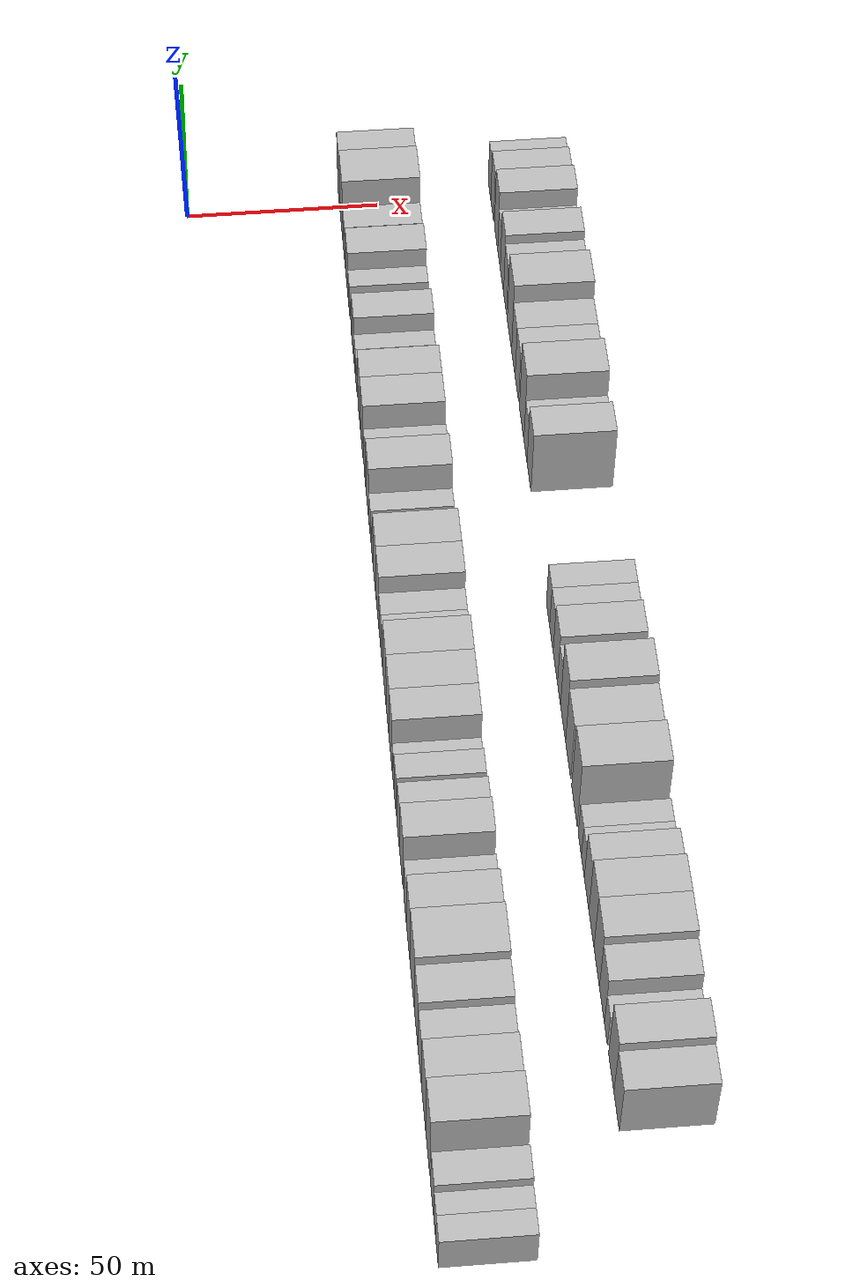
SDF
<sdf version="1.6">
 <world name="default">
  <model name="building_1">
   <static>1</static>
   <pose>50.0000 -295.1199 0 0.000000 0.000000 0.000000</pose>
   <link name="link">
    <pose>0 0 6.00 0 0 0</pose>
    <collision name="collision"><geometry><box><size>20.0000 5.7602 12.0000</size></box></geometry></collision>
    <visual name="visual">
     <cast_shadows>0</cast_shadows>
     <geometry><box><size>20.0000 5.7602 12.0000</size></box></geometry>
     <material>
      <script>
       <uri>model://HANNAS_wall/materials/scripts</uri>
       <uri>model://HANNAS_wall/materials/textures</uri>
       <name>vrc/HANNAS_wall</name>
      </script>
     </material>
    </visual>
   </link>
  </model>
  <model name="building_2">
   <static>1</static>
   <pose>50.0000 -289.7702 0 0.000000 0.000000 0.000000</pose>
   <link name="link">
    <pose>0 0 6.00 0 0 0</pose>
    <collision name="collision"><geometry><box><size>20.0000 4.9393 12.0000</size></box></geometry></collision>
    <visual name="visual">
     <cast_shadows>0</cast_shadows>
     <geometry><box><size>20.0000 4.9393 12.0000</size></box></geometry>
     <material>
      <script>
       <uri>model://HANNAS_wall/materials/scripts</uri>
       <uri>model://HANNAS_wall/materials/textures</uri>
       <name>vrc/HANNAS_wall</name>
      </script>
     </material>
    </visual>
   </link>
  </model>
  <model name="building_3">
   <static>1</static>
   <pose>50.0000 -283.6159 0 0.000000 0.000000 0.000000</pose>
   <link name="link">
    <pose>0 0 7.50 0 0 0</pose>
    <collision name="collision"><geometry><box><size>20.0000 7.3694 15.0000</size></box></geometry></collision>
    <visual name="visual">
     <cast_shadows>0</cast_shadows>
     <geometry><box><size>20.0000 7.3694 15.0000</size></box></geometry>
     <material>
      <script>
       <uri>model://HANNAS_wall/materials/scripts</uri>
       <uri>model://HANNAS_wall/materials/textures</uri>
       <name>vrc/HANNAS_wall</name>
      </script>
     </material>
    </visual>
   </link>
  </model>
  <model name="building_4">
   <static>1</static>
   <pose>50.0000 -272.9616 0 0.000000 0.000000 0.000000</pose>
   <link name="link">
    <pose>0 0 12.00 0 0 0</pose>
    <collision name="collision"><geometry><box><size>20.0000 9.9390 24.0000</size></box></geometry></collision>
    <visual name="visual">
     <cast_shadows>0</cast_shadows>
     <geometry><box><size>20.0000 9.9390 24.0000</size></box></geometry>
     <material>
      <script>
       <uri>model://HANNAS_wall/materials/scripts</uri>
       <uri>model://HANNAS_wall/materials/textures</uri>
       <name>vrc/HANNAS_wall</name>
      </script>
     </material>
    </visual>
   </link>
  </model>
  <model name="building_5">
   <static>1</static>
   <pose>50.0000 -262.8391 0 0.000000 0.000000 0.000000</pose>
   <link name="link">
    <pose>0 0 10.50 0 0 0</pose>
    <collision name="collision"><geometry><box><size>20.0000 10.3061 21.0000</size></box></geometry></collision>
    <visual name="visual">
     <cast_shadows>0</cast_shadows>
     <geometry><box><size>20.0000 10.3061 21.0000</size></box></geometry>
     <material>
      <script>
       <uri>model://HANNAS_wall/materials/scripts</uri>
       <uri>model://HANNAS_wall/materials/textures</uri>
       <name>vrc/HANNAS_wall</name>
      </script>
     </material>
    </visual>
   </link>
  </model>
  <model name="building_6">
   <static>1</static>
   <pose>50.0000 -253.5562 0 0.000000 0.000000 0.000000</pose>
   <link name="link">
    <pose>0 0 9.00 0 0 0</pose>
    <collision name="collision"><geometry><box><size>20.0000 8.2598 18.0000</size></box></geometry></collision>
    <visual name="visual">
     <cast_shadows>0</cast_shadows>
     <geometry><box><size>20.0000 8.2598 18.0000</size></box></geometry>
     <material>
      <script>
       <uri>model://HANNAS_wall/materials/scripts</uri>
       <uri>model://HANNAS_wall/materials/textures</uri>
       <name>vrc/HANNAS_wall</name>
      </script>
     </material>
    </visual>
   </link>
  </model>
  <model name="building_7">
   <static>1</static>
   <pose>50.0000 -244.9566 0 0.000000 0.000000 0.000000</pose>
   <link name="link">
    <pose>0 0 10.50 0 0 0</pose>
    <collision name="collision"><geometry><box><size>20.0000 8.9393 21.0000</size></box></geometry></collision>
    <visual name="visual">
     <cast_shadows>0</cast_shadows>
     <geometry><box><size>20.0000 8.9393 21.0000</size></box></geometry>
     <material>
      <script>
       <uri>model://HANNAS_wall/materials/scripts</uri>
       <uri>model://HANNAS_wall/materials/textures</uri>
       <name>vrc/HANNAS_wall</name>
      </script>
     </material>
    </visual>
   </link>
  </model>
  <model name="building_8">
   <static>1</static>
   <pose>50.0000 -234.5517 0 0.000000 0.000000 0.000000</pose>
   <link name="link">
    <pose>0 0 12.00 0 0 0</pose>
    <collision name="collision"><geometry><box><size>20.0000 11.8707 24.0000</size></box></geometry></collision>
    <visual name="visual">
     <cast_shadows>0</cast_shadows>
     <geometry><box><size>20.0000 11.8707 24.0000</size></box></geometry>
     <material>
      <script>
       <uri>model://HANNAS_wall/materials/scripts</uri>
       <uri>model://HANNAS_wall/materials/textures</uri>
       <name>vrc/HANNAS_wall</name>
      </script>
     </material>
    </visual>
   </link>
  </model>
  <model name="building_9">
   <static>1</static>
   <pose>50.0000 -223.6059 0 0.000000 0.000000 0.000000</pose>
   <link name="link">
    <pose>0 0 10.50 0 0 0</pose>
    <collision name="collision"><geometry><box><size>20.0000 10.0209 21.0000</size></box></geometry></collision>
    <visual name="visual">
     <cast_shadows>0</cast_shadows>
     <geometry><box><size>20.0000 10.0209 21.0000</size></box></geometry>
     <material>
      <script>
       <uri>model://HANNAS_wall/materials/scripts</uri>
       <uri>model://HANNAS_wall/materials/textures</uri>
       <name>vrc/HANNAS_wall</name>
      </script>
     </material>
    </visual>
   </link>
  </model>
  <model name="building_10">
   <static>1</static>
   <pose>50.0000 -214.9441 0 0.000000 0.000000 0.000000</pose>
   <link name="link">
    <pose>0 0 7.50 0 0 0</pose>
    <collision name="collision"><geometry><box><size>20.0000 7.3027 15.0000</size></box></geometry></collision>
    <visual name="visual">
     <cast_shadows>0</cast_shadows>
     <geometry><box><size>20.0000 7.3027 15.0000</size></box></geometry>
     <material>
      <script>
       <uri>model://HANNAS_wall/materials/scripts</uri>
       <uri>model://HANNAS_wall/materials/textures</uri>
       <name>vrc/HANNAS_wall</name>
      </script>
     </material>
    </visual>
   </link>
  </model>
  <model name="building_11">
   <static>1</static>
   <pose>50.0000 -204.8995 0 0.000000 0.000000 0.000000</pose>
   <link name="link">
    <pose>0 0 10.50 0 0 0</pose>
    <collision name="collision"><geometry><box><size>20.0000 8.7866 21.0000</size></box></geometry></collision>
    <visual name="visual">
     <cast_shadows>0</cast_shadows>
     <geometry><box><size>20.0000 8.7866 21.0000</size></box></geometry>
     <material>
      <script>
       <uri>model://HANNAS_wall/materials/scripts</uri>
       <uri>model://HANNAS_wall/materials/textures</uri>
       <name>vrc/HANNAS_wall</name>
      </script>
     </material>
    </visual>
   </link>
  </model>
  <model name="building_12">
   <static>1</static>
   <pose>50.0000 -196.8550 0 0.000000 0.000000 0.000000</pose>
   <link name="link">
    <pose>0 0 9.00 0 0 0</pose>
    <collision name="collision"><geometry><box><size>20.0000 7.3025 18.0000</size></box></geometry></collision>
    <visual name="visual">
     <cast_shadows>0</cast_shadows>
     <geometry><box><size>20.0000 7.3025 18.0000</size></box></geometry>
     <material>
      <script>
       <uri>model://HANNAS_wall/materials/scripts</uri>
       <uri>model://HANNAS_wall/materials/textures</uri>
       <name>vrc/HANNAS_wall</name>
      </script>
     </material>
    </visual>
   </link>
  </model>
  <model name="building_13">
   <static>1</static>
   <pose>50.0000 -187.0091 0 0.000000 0.000000 0.000000</pose>
   <link name="link">
    <pose>0 0 7.50 0 0 0</pose>
    <collision name="collision"><geometry><box><size>20.0000 6.3892 15.0000</size></box></geometry></collision>
    <visual name="visual">
     <cast_shadows>0</cast_shadows>
     <geometry><box><size>20.0000 6.3892 15.0000</size></box></geometry>
     <material>
      <script>
       <uri>model://HANNAS_wall/materials/scripts</uri>
       <uri>model://HANNAS_wall/materials/textures</uri>
       <name>vrc/HANNAS_wall</name>
      </script>
     </material>
    </visual>
   </link>
  </model>
  <model name="building_14">
   <static>1</static>
   <pose>50.0000 -181.3262 0 0.000000 0.000000 0.000000</pose>
   <link name="link">
    <pose>0 0 6.00 0 0 0</pose>
    <collision name="collision"><geometry><box><size>20.0000 4.9767 12.0000</size></box></geometry></collision>
    <visual name="visual">
     <cast_shadows>0</cast_shadows>
     <geometry><box><size>20.0000 4.9767 12.0000</size></box></geometry>
     <material>
      <script>
       <uri>model://HANNAS_wall/materials/scripts</uri>
       <uri>model://HANNAS_wall/materials/textures</uri>
       <name>vrc/HANNAS_wall</name>
      </script>
     </material>
    </visual>
   </link>
  </model>
  <model name="building_15">
   <static>1</static>
   <pose>50.0000 -174.5709 0 0.000000 0.000000 0.000000</pose>
   <link name="link">
    <pose>0 0 10.50 0 0 0</pose>
    <collision name="collision"><geometry><box><size>20.0000 8.5340 21.0000</size></box></geometry></collision>
    <visual name="visual">
     <cast_shadows>0</cast_shadows>
     <geometry><box><size>20.0000 8.5340 21.0000</size></box></geometry>
     <material>
      <script>
       <uri>model://HANNAS_wall/materials/scripts</uri>
       <uri>model://HANNAS_wall/materials/textures</uri>
       <name>vrc/HANNAS_wall</name>
      </script>
     </material>
    </visual>
   </link>
  </model>
  <model name="building_16">
   <static>1</static>
   <pose>50.0000 -165.5938 0 0.000000 0.000000 0.000000</pose>
   <link name="link">
    <pose>0 0 10.50 0 0 0</pose>
    <collision name="collision"><geometry><box><size>20.0000 9.4202 21.0000</size></box></geometry></collision>
    <visual name="visual">
     <cast_shadows>0</cast_shadows>
     <geometry><box><size>20.0000 9.4202 21.0000</size></box></geometry>
     <material>
      <script>
       <uri>model://HANNAS_wall/materials/scripts</uri>
       <uri>model://HANNAS_wall/materials/textures</uri>
       <name>vrc/HANNAS_wall</name>
      </script>
     </material>
    </visual>
   </link>
  </model>
  <model name="building_17">
   <static>1</static>
   <pose>50.0000 -156.1160 0 0.000000 0.000000 0.000000</pose>
   <link name="link">
    <pose>0 0 10.50 0 0 0</pose>
    <collision name="collision"><geometry><box><size>20.0000 9.5353 21.0000</size></box></geometry></collision>
    <visual name="visual">
     <cast_shadows>0</cast_shadows>
     <geometry><box><size>20.0000 9.5353 21.0000</size></box></geometry>
     <material>
      <script>
       <uri>model://HANNAS_wall/materials/scripts</uri>
       <uri>model://HANNAS_wall/materials/textures</uri>
       <name>vrc/HANNAS_wall</name>
      </script>
     </material>
    </visual>
   </link>
  </model>
  <model name="building_18">
   <static>1</static>
   <pose>50.0000 -148.3385 0 0.000000 0.000000 0.000000</pose>
   <link name="link">
    <pose>0 0 7.50 0 0 0</pose>
    <collision name="collision"><geometry><box><size>20.0000 6.0197 15.0000</size></box></geometry></collision>
    <visual name="visual">
     <cast_shadows>0</cast_shadows>
     <geometry><box><size>20.0000 6.0197 15.0000</size></box></geometry>
     <material>
      <script>
       <uri>model://HANNAS_wall/materials/scripts</uri>
       <uri>model://HANNAS_wall/materials/textures</uri>
       <name>vrc/HANNAS_wall</name>
      </script>
     </material>
    </visual>
   </link>
  </model>
  <model name="building_19">
   <static>1</static>
   <pose>50.0000 -142.2222 0 0.000000 0.000000 0.000000</pose>
   <link name="link">
    <pose>0 0 7.50 0 0 0</pose>
    <collision name="collision"><geometry><box><size>20.0000 6.2130 15.0000</size></box></geometry></collision>
    <visual name="visual">
     <cast_shadows>0</cast_shadows>
     <geometry><box><size>20.0000 6.2130 15.0000</size></box></geometry>
     <material>
      <script>
       <uri>model://HANNAS_wall/materials/scripts</uri>
       <uri>model://HANNAS_wall/materials/textures</uri>
       <name>vrc/HANNAS_wall</name>
      </script>
     </material>
    </visual>
   </link>
  </model>
  <model name="building_20">
   <static>1</static>
   <pose>50.0000 -134.5825 0 0.000000 0.000000 0.000000</pose>
   <link name="link">
    <pose>0 0 10.50 0 0 0</pose>
    <collision name="collision"><geometry><box><size>20.0000 9.0664 21.0000</size></box></geometry></collision>
    <visual name="visual">
     <cast_shadows>0</cast_shadows>
     <geometry><box><size>20.0000 9.0664 21.0000</size></box></geometry>
     <material>
      <script>
       <uri>model://HANNAS_wall/materials/scripts</uri>
       <uri>model://HANNAS_wall/materials/textures</uri>
       <name>vrc/HANNAS_wall</name>
      </script>
     </material>
    </visual>
   </link>
  </model>
  <model name="building_21">
   <static>1</static>
   <pose>50.0000 -125.1718 0 0.000000 0.000000 0.000000</pose>
   <link name="link">
    <pose>0 0 10.50 0 0 0</pose>
    <collision name="collision"><geometry><box><size>20.0000 9.7550 21.0000</size></box></geometry></collision>
    <visual name="visual">
     <cast_shadows>0</cast_shadows>
     <geometry><box><size>20.0000 9.7550 21.0000</size></box></geometry>
     <material>
      <script>
       <uri>model://HANNAS_wall/materials/scripts</uri>
       <uri>model://HANNAS_wall/materials/textures</uri>
       <name>vrc/HANNAS_wall</name>
      </script>
     </material>
    </visual>
   </link>
  </model>
  <model name="building_22">
   <static>1</static>
   <pose>50.0000 -117.8900 0 0.000000 0.000000 0.000000</pose>
   <link name="link">
    <pose>0 0 6.00 0 0 0</pose>
    <collision name="collision"><geometry><box><size>20.0000 4.8085 12.0000</size></box></geometry></collision>
    <visual name="visual">
     <cast_shadows>0</cast_shadows>
     <geometry><box><size>20.0000 4.8085 12.0000</size></box></geometry>
     <material>
      <script>
       <uri>model://HANNAS_wall/materials/scripts</uri>
       <uri>model://HANNAS_wall/materials/textures</uri>
       <name>vrc/HANNAS_wall</name>
      </script>
     </material>
    </visual>
   </link>
  </model>
  <model name="building_23">
   <static>1</static>
   <pose>50.0000 -109.7450 0 0.000000 0.000000 0.000000</pose>
   <link name="link">
    <pose>0 0 6.00 0 0 0</pose>
    <collision name="collision"><geometry><box><size>20.0000 5.4815 12.0000</size></box></geometry></collision>
    <visual name="visual">
     <cast_shadows>0</cast_shadows>
     <geometry><box><size>20.0000 5.4815 12.0000</size></box></geometry>
     <material>
      <script>
       <uri>model://HANNAS_wall/materials/scripts</uri>
       <uri>model://HANNAS_wall/materials/textures</uri>
       <name>vrc/HANNAS_wall</name>
      </script>
     </material>
    </visual>
   </link>
  </model>
  <model name="building_24">
   <static>1</static>
   <pose>50.0000 -102.2706 0 0.000000 0.000000 0.000000</pose>
   <link name="link">
    <pose>0 0 10.50 0 0 0</pose>
    <collision name="collision"><geometry><box><size>20.0000 9.4674 21.0000</size></box></geometry></collision>
    <visual name="visual">
     <cast_shadows>0</cast_shadows>
     <geometry><box><size>20.0000 9.4674 21.0000</size></box></geometry>
     <material>
      <script>
       <uri>model://HANNAS_wall/materials/scripts</uri>
       <uri>model://HANNAS_wall/materials/textures</uri>
       <name>vrc/HANNAS_wall</name>
      </script>
     </material>
    </visual>
   </link>
  </model>
  <model name="building_25">
   <static>1</static>
   <pose>50.0000 -92.4875 0 0.000000 0.000000 0.000000</pose>
   <link name="link">
    <pose>0 0 7.50 0 0 0</pose>
    <collision name="collision"><geometry><box><size>20.0000 6.0987 15.0000</size></box></geometry></collision>
    <visual name="visual">
     <cast_shadows>0</cast_shadows>
     <geometry><box><size>20.0000 6.0987 15.0000</size></box></geometry>
     <material>
      <script>
       <uri>model://HANNAS_wall/materials/scripts</uri>
       <uri>model://HANNAS_wall/materials/textures</uri>
       <name>vrc/HANNAS_wall</name>
      </script>
     </material>
    </visual>
   </link>
  </model>
  <model name="building_26">
   <static>1</static>
   <pose>50.0000 -82.7279 0 0.000000 0.000000 0.000000</pose>
   <link name="link">
    <pose>0 0 10.50 0 0 0</pose>
    <collision name="collision"><geometry><box><size>20.0000 9.4206 21.0000</size></box></geometry></collision>
    <visual name="visual">
     <cast_shadows>0</cast_shadows>
     <geometry><box><size>20.0000 9.4206 21.0000</size></box></geometry>
     <material>
      <script>
       <uri>model://HANNAS_wall/materials/scripts</uri>
       <uri>model://HANNAS_wall/materials/textures</uri>
       <name>vrc/HANNAS_wall</name>
      </script>
     </material>
    </visual>
   </link>
  </model>
  <model name="building_27">
   <static>1</static>
   <pose>50.0000 -73.6038 0 0.000000 0.000000 0.000000</pose>
   <link name="link">
    <pose>0 0 10.50 0 0 0</pose>
    <collision name="collision"><geometry><box><size>20.0000 8.8276 21.0000</size></box></geometry></collision>
    <visual name="visual">
     <cast_shadows>0</cast_shadows>
     <geometry><box><size>20.0000 8.8276 21.0000</size></box></geometry>
     <material>
      <script>
       <uri>model://HANNAS_wall/materials/scripts</uri>
       <uri>model://HANNAS_wall/materials/textures</uri>
       <name>vrc/HANNAS_wall</name>
      </script>
     </material>
    </visual>
   </link>
  </model>
  <model name="building_28">
   <static>1</static>
   <pose>50.0000 -63.6150 0 0.000000 0.000000 0.000000</pose>
   <link name="link">
    <pose>0 0 6.00 0 0 0</pose>
    <collision name="collision"><geometry><box><size>20.0000 5.1499 12.0000</size></box></geometry></collision>
    <visual name="visual">
     <cast_shadows>0</cast_shadows>
     <geometry><box><size>20.0000 5.1499 12.0000</size></box></geometry>
     <material>
      <script>
       <uri>model://HANNAS_wall/materials/scripts</uri>
       <uri>model://HANNAS_wall/materials/textures</uri>
       <name>vrc/HANNAS_wall</name>
      </script>
     </material>
    </visual>
   </link>
  </model>
  <model name="building_29">
   <static>1</static>
   <pose>50.0000 -58.5126 0 0.000000 0.000000 0.000000</pose>
   <link name="link">
    <pose>0 0 6.00 0 0 0</pose>
    <collision name="collision"><geometry><box><size>20.0000 5.0548 12.0000</size></box></geometry></collision>
    <visual name="visual">
     <cast_shadows>0</cast_shadows>
     <geometry><box><size>20.0000 5.0548 12.0000</size></box></geometry>
     <material>
      <script>
       <uri>model://HANNAS_wall/materials/scripts</uri>
       <uri>model://HANNAS_wall/materials/textures</uri>
       <name>vrc/HANNAS_wall</name>
      </script>
     </material>
    </visual>
   </link>
  </model>
  <model name="building_30">
   <static>1</static>
   <pose>50.0000 -51.8167 0 0.000000 0.000000 0.000000</pose>
   <link name="link">
    <pose>0 0 9.00 0 0 0</pose>
    <collision name="collision"><geometry><box><size>20.0000 8.3369 18.0000</size></box></geometry></collision>
    <visual name="visual">
     <cast_shadows>0</cast_shadows>
     <geometry><box><size>20.0000 8.3369 18.0000</size></box></geometry>
     <material>
      <script>
       <uri>model://HANNAS_wall/materials/scripts</uri>
       <uri>model://HANNAS_wall/materials/textures</uri>
       <name>vrc/HANNAS_wall</name>
      </script>
     </material>
    </visual>
   </link>
  </model>
  <model name="building_31">
   <static>1</static>
   <pose>50.0000 -45.2195 0 0.000000 0.000000 0.000000</pose>
   <link name="link">
    <pose>0 0 6.00 0 0 0</pose>
    <collision name="collision"><geometry><box><size>20.0000 4.8577 12.0000</size></box></geometry></collision>
    <visual name="visual">
     <cast_shadows>0</cast_shadows>
     <geometry><box><size>20.0000 4.8577 12.0000</size></box></geometry>
     <material>
      <script>
       <uri>model://HANNAS_wall/materials/scripts</uri>
       <uri>model://HANNAS_wall/materials/textures</uri>
       <name>vrc/HANNAS_wall</name>
      </script>
     </material>
    </visual>
   </link>
  </model>
  <model name="building_32">
   <static>1</static>
   <pose>50.0000 -36.8826 0 0.000000 0.000000 0.000000</pose>
   <link name="link">
    <pose>0 0 6.00 0 0 0</pose>
    <collision name="collision"><geometry><box><size>20.0000 5.8160 12.0000</size></box></geometry></collision>
    <visual name="visual">
     <cast_shadows>0</cast_shadows>
     <geometry><box><size>20.0000 5.8160 12.0000</size></box></geometry>
     <material>
      <script>
       <uri>model://HANNAS_wall/materials/scripts</uri>
       <uri>model://HANNAS_wall/materials/textures</uri>
       <name>vrc/HANNAS_wall</name>
      </script>
     </material>
    </visual>
   </link>
  </model>
  <model name="building_33">
   <static>1</static>
   <pose>50.0000 -29.4980 0 0.000000 0.000000 0.000000</pose>
   <link name="link">
    <pose>0 0 9.00 0 0 0</pose>
    <collision name="collision"><geometry><box><size>20.0000 8.9532 18.0000</size></box></geometry></collision>
    <visual name="visual">
     <cast_shadows>0</cast_shadows>
     <geometry><box><size>20.0000 8.9532 18.0000</size></box></geometry>
     <material>
      <script>
       <uri>model://HANNAS_wall/materials/scripts</uri>
       <uri>model://HANNAS_wall/materials/textures</uri>
       <name>vrc/HANNAS_wall</name>
      </script>
     </material>
    </visual>
   </link>
  </model>
  <model name="building_34">
   <static>1</static>
   <pose>50.0000 -18.2981 0 0.000000 0.000000 0.000000</pose>
   <link name="link">
    <pose>0 0 7.50 0 0 0</pose>
    <collision name="collision"><geometry><box><size>20.0000 7.4467 15.0000</size></box></geometry></collision>
    <visual name="visual">
     <cast_shadows>0</cast_shadows>
     <geometry><box><size>20.0000 7.4467 15.0000</size></box></geometry>
     <material>
      <script>
       <uri>model://HANNAS_wall/materials/scripts</uri>
       <uri>model://HANNAS_wall/materials/textures</uri>
       <name>vrc/HANNAS_wall</name>
      </script>
     </material>
    </visual>
   </link>
  </model>
  <model name="building_35">
   <static>1</static>
   <pose>50.0000 -8.8519 0 0.000000 0.000000 0.000000</pose>
   <link name="link">
    <pose>0 0 12.00 0 0 0</pose>
    <collision name="collision"><geometry><box><size>20.0000 11.4456 24.0000</size></box></geometry></collision>
    <visual name="visual">
     <cast_shadows>0</cast_shadows>
     <geometry><box><size>20.0000 11.4456 24.0000</size></box></geometry>
     <material>
      <script>
       <uri>model://HANNAS_wall/materials/scripts</uri>
       <uri>model://HANNAS_wall/materials/textures</uri>
       <name>vrc/HANNAS_wall</name>
      </script>
     </material>
    </visual>
   </link>
  </model>
  <model name="building_36">
   <static>1</static>
   <pose>50.0000 1.7519 0 0.000000 0.000000 0.000000</pose>
   <link name="link">
    <pose>0 0 10.50 0 0 0</pose>
    <collision name="collision"><geometry><box><size>20.0000 9.7621 21.0000</size></box></geometry></collision>
    <visual name="visual">
     <cast_shadows>0</cast_shadows>
     <geometry><box><size>20.0000 9.7621 21.0000</size></box></geometry>
     <material>
      <script>
       <uri>model://HANNAS_wall/materials/scripts</uri>
       <uri>model://HANNAS_wall/materials/textures</uri>
       <name>vrc/HANNAS_wall</name>
      </script>
     </material>
    </visual>
   </link>
  </model>
  <model name="building_67">
   <static>1</static>
   <pose>90.0000 -266.5864 0 0.000000 0.000000 0.000000</pose>
   <link name="link">
    <pose>0 0 9.00 0 0 0</pose>
    <collision name="collision"><geometry><box><size>20.0000 8.9424 18.0000</size></box></geometry></collision>
    <visual name="visual">
     <cast_shadows>0</cast_shadows>
     <geometry><box><size>20.0000 8.9424 18.0000</size></box></geometry>
     <material>
      <script>
       <uri>model://HANNAS_wall/materials/scripts</uri>
       <uri>model://HANNAS_wall/materials/textures</uri>
       <name>vrc/HANNAS_wall</name>
      </script>
     </material>
    </visual>
   </link>
  </model>
  <model name="building_68">
   <static>1</static>
   <pose>90.0000 -257.5883 0 0.000000 0.000000 0.000000</pose>
   <link name="link">
    <pose>0 0 10.50 0 0 0</pose>
    <collision name="collision"><geometry><box><size>20.0000 9.0538 21.0000</size></box></geometry></collision>
    <visual name="visual">
     <cast_shadows>0</cast_shadows>
     <geometry><box><size>20.0000 9.0538 21.0000</size></box></geometry>
     <material>
      <script>
       <uri>model://HANNAS_wall/materials/scripts</uri>
       <uri>model://HANNAS_wall/materials/textures</uri>
       <name>vrc/HANNAS_wall</name>
      </script>
     </material>
    </visual>
   </link>
  </model>
  <model name="building_69">
   <static>1</static>
   <pose>90.0000 -248.4608 0 0.000000 0.000000 0.000000</pose>
   <link name="link">
    <pose>0 0 6.00 0 0 0</pose>
    <collision name="collision"><geometry><box><size>20.0000 5.2011 12.0000</size></box></geometry></collision>
    <visual name="visual">
     <cast_shadows>0</cast_shadows>
     <geometry><box><size>20.0000 5.2011 12.0000</size></box></geometry>
     <material>
      <script>
       <uri>model://HANNAS_wall/materials/scripts</uri>
       <uri>model://HANNAS_wall/materials/textures</uri>
       <name>vrc/HANNAS_wall</name>
      </script>
     </material>
    </visual>
   </link>
  </model>
  <model name="building_70">
   <static>1</static>
   <pose>90.0000 -241.4986 0 0.000000 0.000000 0.000000</pose>
   <link name="link">
    <pose>0 0 9.00 0 0 0</pose>
    <collision name="collision"><geometry><box><size>20.0000 8.7232 18.0000</size></box></geometry></collision>
    <visual name="visual">
     <cast_shadows>0</cast_shadows>
     <geometry><box><size>20.0000 8.7232 18.0000</size></box></geometry>
     <material>
      <script>
       <uri>model://HANNAS_wall/materials/scripts</uri>
       <uri>model://HANNAS_wall/materials/textures</uri>
       <name>vrc/HANNAS_wall</name>
      </script>
     </material>
    </visual>
   </link>
  </model>
  <model name="building_71">
   <static>1</static>
   <pose>90.0000 -232.2671 0 0.000000 0.000000 0.000000</pose>
   <link name="link">
    <pose>0 0 10.50 0 0 0</pose>
    <collision name="collision"><geometry><box><size>20.0000 9.7399 21.0000</size></box></geometry></collision>
    <visual name="visual">
     <cast_shadows>0</cast_shadows>
     <geometry><box><size>20.0000 9.7399 21.0000</size></box></geometry>
     <material>
      <script>
       <uri>model://HANNAS_wall/materials/scripts</uri>
       <uri>model://HANNAS_wall/materials/textures</uri>
       <name>vrc/HANNAS_wall</name>
      </script>
     </material>
    </visual>
   </link>
  </model>
  <model name="building_72">
   <static>1</static>
   <pose>90.0000 -222.7980 0 0.000000 0.000000 0.000000</pose>
   <link name="link">
    <pose>0 0 10.50 0 0 0</pose>
    <collision name="collision"><geometry><box><size>20.0000 9.1984 21.0000</size></box></geometry></collision>
    <visual name="visual">
     <cast_shadows>0</cast_shadows>
     <geometry><box><size>20.0000 9.1984 21.0000</size></box></geometry>
     <material>
      <script>
       <uri>model://HANNAS_wall/materials/scripts</uri>
       <uri>model://HANNAS_wall/materials/textures</uri>
       <name>vrc/HANNAS_wall</name>
      </script>
     </material>
    </visual>
   </link>
  </model>
  <model name="building_73">
   <static>1</static>
   <pose>90.0000 -213.9972 0 0.000000 0.000000 0.000000</pose>
   <link name="link">
    <pose>0 0 9.00 0 0 0</pose>
    <collision name="collision"><geometry><box><size>20.0000 8.4032 18.0000</size></box></geometry></collision>
    <visual name="visual">
     <cast_shadows>0</cast_shadows>
     <geometry><box><size>20.0000 8.4032 18.0000</size></box></geometry>
     <material>
      <script>
       <uri>model://HANNAS_wall/materials/scripts</uri>
       <uri>model://HANNAS_wall/materials/textures</uri>
       <name>vrc/HANNAS_wall</name>
      </script>
     </material>
    </visual>
   </link>
  </model>
  <model name="building_74">
   <static>1</static>
   <pose>90.0000 -207.0177 0 0.000000 0.000000 0.000000</pose>
   <link name="link">
    <pose>0 0 6.00 0 0 0</pose>
    <collision name="collision"><geometry><box><size>20.0000 5.5557 12.0000</size></box></geometry></collision>
    <visual name="visual">
     <cast_shadows>0</cast_shadows>
     <geometry><box><size>20.0000 5.5557 12.0000</size></box></geometry>
     <material>
      <script>
       <uri>model://HANNAS_wall/materials/scripts</uri>
       <uri>model://HANNAS_wall/materials/textures</uri>
       <name>vrc/HANNAS_wall</name>
      </script>
     </material>
    </visual>
   </link>
  </model>
  <model name="building_75">
   <static>1</static>
   <pose>90.0000 -201.2737 0 0.000000 0.000000 0.000000</pose>
   <link name="link">
    <pose>0 0 6.00 0 0 0</pose>
    <collision name="collision"><geometry><box><size>20.0000 5.9324 12.0000</size></box></geometry></collision>
    <visual name="visual">
     <cast_shadows>0</cast_shadows>
     <geometry><box><size>20.0000 5.9324 12.0000</size></box></geometry>
     <material>
      <script>
       <uri>model://HANNAS_wall/materials/scripts</uri>
       <uri>model://HANNAS_wall/materials/textures</uri>
       <name>vrc/HANNAS_wall</name>
      </script>
     </material>
    </visual>
   </link>
  </model>
  <model name="building_76">
   <static>1</static>
   <pose>90.0000 -190.9679 0 0.000000 0.000000 0.000000</pose>
   <link name="link">
    <pose>0 0 12.00 0 0 0</pose>
    <collision name="collision"><geometry><box><size>20.0000 10.6791 24.0000</size></box></geometry></collision>
    <visual name="visual">
     <cast_shadows>0</cast_shadows>
     <geometry><box><size>20.0000 10.6791 24.0000</size></box></geometry>
     <material>
      <script>
       <uri>model://HANNAS_wall/materials/scripts</uri>
       <uri>model://HANNAS_wall/materials/textures</uri>
       <name>vrc/HANNAS_wall</name>
      </script>
     </material>
    </visual>
   </link>
  </model>
  <model name="building_77">
   <static>1</static>
   <pose>90.0000 -178.5975 0 0.000000 0.000000 0.000000</pose>
   <link name="link">
    <pose>0 0 10.50 0 0 0</pose>
    <collision name="collision"><geometry><box><size>20.0000 10.0618 21.0000</size></box></geometry></collision>
    <visual name="visual">
     <cast_shadows>0</cast_shadows>
     <geometry><box><size>20.0000 10.0618 21.0000</size></box></geometry>
     <material>
      <script>
       <uri>model://HANNAS_wall/materials/scripts</uri>
       <uri>model://HANNAS_wall/materials/textures</uri>
       <name>vrc/HANNAS_wall</name>
      </script>
     </material>
    </visual>
   </link>
  </model>
  <model name="building_78">
   <static>1</static>
   <pose>90.0000 -168.4599 0 0.000000 0.000000 0.000000</pose>
   <link name="link">
    <pose>0 0 12.00 0 0 0</pose>
    <collision name="collision"><geometry><box><size>20.0000 10.2133 24.0000</size></box></geometry></collision>
    <visual name="visual">
     <cast_shadows>0</cast_shadows>
     <geometry><box><size>20.0000 10.2133 24.0000</size></box></geometry>
     <material>
      <script>
       <uri>model://HANNAS_wall/materials/scripts</uri>
       <uri>model://HANNAS_wall/materials/textures</uri>
       <name>vrc/HANNAS_wall</name>
      </script>
     </material>
    </visual>
   </link>
  </model>
  <model name="building_79">
   <static>1</static>
   <pose>90.0000 -160.2589 0 0.000000 0.000000 0.000000</pose>
   <link name="link">
    <pose>0 0 7.50 0 0 0</pose>
    <collision name="collision"><geometry><box><size>20.0000 6.1887 15.0000</size></box></geometry></collision>
    <visual name="visual">
     <cast_shadows>0</cast_shadows>
     <geometry><box><size>20.0000 6.1887 15.0000</size></box></geometry>
     <material>
      <script>
       <uri>model://HANNAS_wall/materials/scripts</uri>
       <uri>model://HANNAS_wall/materials/textures</uri>
       <name>vrc/HANNAS_wall</name>
      </script>
     </material>
    </visual>
   </link>
  </model>
  <model name="building_80">
   <static>1</static>
   <pose>90.0000 -152.6705 0 0.000000 0.000000 0.000000</pose>
   <link name="link">
    <pose>0 0 9.00 0 0 0</pose>
    <collision name="collision"><geometry><box><size>20.0000 8.9881 18.0000</size></box></geometry></collision>
    <visual name="visual">
     <cast_shadows>0</cast_shadows>
     <geometry><box><size>20.0000 8.9881 18.0000</size></box></geometry>
     <material>
      <script>
       <uri>model://HANNAS_wall/materials/scripts</uri>
       <uri>model://HANNAS_wall/materials/textures</uri>
       <name>vrc/HANNAS_wall</name>
      </script>
     </material>
    </visual>
   </link>
  </model>
  <model name="building_81">
   <static>1</static>
   <pose>90.0000 -144.4801 0 0.000000 0.000000 0.000000</pose>
   <link name="link">
    <pose>0 0 7.50 0 0 0</pose>
    <collision name="collision"><geometry><box><size>20.0000 7.3928 15.0000</size></box></geometry></collision>
    <visual name="visual">
     <cast_shadows>0</cast_shadows>
     <geometry><box><size>20.0000 7.3928 15.0000</size></box></geometry>
     <material>
      <script>
       <uri>model://HANNAS_wall/materials/scripts</uri>
       <uri>model://HANNAS_wall/materials/textures</uri>
       <name>vrc/HANNAS_wall</name>
      </script>
     </material>
    </visual>
   </link>
  </model>
  <model name="building_82">
   <static>1</static>
   <pose>90.0000 -137.4026 0 0.000000 0.000000 0.000000</pose>
   <link name="link">
    <pose>0 0 7.50 0 0 0</pose>
    <collision name="collision"><geometry><box><size>20.0000 6.7621 15.0000</size></box></geometry></collision>
    <visual name="visual">
     <cast_shadows>0</cast_shadows>
     <geometry><box><size>20.0000 6.7621 15.0000</size></box></geometry>
     <material>
      <script>
       <uri>model://HANNAS_wall/materials/scripts</uri>
       <uri>model://HANNAS_wall/materials/textures</uri>
       <name>vrc/HANNAS_wall</name>
      </script>
     </material>
    </visual>
   </link>
  </model>
  <model name="building_83">
   <static>1</static>
   <pose>90.0000 -95.3640 0 0.000000 0.000000 0.000000</pose>
   <link name="link">
    <pose>0 0 10.50 0 0 0</pose>
    <collision name="collision"><geometry><box><size>20.0000 9.1050 21.0000</size></box></geometry></collision>
    <visual name="visual">
     <cast_shadows>0</cast_shadows>
     <geometry><box><size>20.0000 9.1050 21.0000</size></box></geometry>
     <material>
      <script>
       <uri>model://HANNAS_wall/materials/scripts</uri>
       <uri>model://HANNAS_wall/materials/textures</uri>
       <name>vrc/HANNAS_wall</name>
      </script>
     </material>
    </visual>
   </link>
  </model>
  <model name="building_84">
   <static>1</static>
   <pose>90.0000 -87.1847 0 0.000000 0.000000 0.000000</pose>
   <link name="link">
    <pose>0 0 7.50 0 0 0</pose>
    <collision name="collision"><geometry><box><size>20.0000 7.2535 15.0000</size></box></geometry></collision>
    <visual name="visual">
     <cast_shadows>0</cast_shadows>
     <geometry><box><size>20.0000 7.2535 15.0000</size></box></geometry>
     <material>
      <script>
       <uri>model://HANNAS_wall/materials/scripts</uri>
       <uri>model://HANNAS_wall/materials/textures</uri>
       <name>vrc/HANNAS_wall</name>
      </script>
     </material>
    </visual>
   </link>
  </model>
  <model name="building_85">
   <static>1</static>
   <pose>90.0000 -78.2628 0 0.000000 0.000000 0.000000</pose>
   <link name="link">
    <pose>0 0 12.00 0 0 0</pose>
    <collision name="collision"><geometry><box><size>20.0000 10.5904 24.0000</size></box></geometry></collision>
    <visual name="visual">
     <cast_shadows>0</cast_shadows>
     <geometry><box><size>20.0000 10.5904 24.0000</size></box></geometry>
     <material>
      <script>
       <uri>model://HANNAS_wall/materials/scripts</uri>
       <uri>model://HANNAS_wall/materials/textures</uri>
       <name>vrc/HANNAS_wall</name>
      </script>
     </material>
    </visual>
   </link>
  </model>
  <model name="building_86">
   <static>1</static>
   <pose>90.0000 -66.8127 0 0.000000 0.000000 0.000000</pose>
   <link name="link">
    <pose>0 0 9.00 0 0 0</pose>
    <collision name="collision"><geometry><box><size>20.0000 8.3098 18.0000</size></box></geometry></collision>
    <visual name="visual">
     <cast_shadows>0</cast_shadows>
     <geometry><box><size>20.0000 8.3098 18.0000</size></box></geometry>
     <material>
      <script>
       <uri>model://HANNAS_wall/materials/scripts</uri>
       <uri>model://HANNAS_wall/materials/textures</uri>
       <name>vrc/HANNAS_wall</name>
      </script>
     </material>
    </visual>
   </link>
  </model>
  <model name="building_87">
   <static>1</static>
   <pose>90.0000 -58.3492 0 0.000000 0.000000 0.000000</pose>
   <link name="link">
    <pose>0 0 9.00 0 0 0</pose>
    <collision name="collision"><geometry><box><size>20.0000 8.6170 18.0000</size></box></geometry></collision>
    <visual name="visual">
     <cast_shadows>0</cast_shadows>
     <geometry><box><size>20.0000 8.6170 18.0000</size></box></geometry>
     <material>
      <script>
       <uri>model://HANNAS_wall/materials/scripts</uri>
       <uri>model://HANNAS_wall/materials/textures</uri>
       <name>vrc/HANNAS_wall</name>
      </script>
     </material>
    </visual>
   </link>
  </model>
  <model name="building_88">
   <static>1</static>
   <pose>90.0000 -48.6490 0 0.000000 0.000000 0.000000</pose>
   <link name="link">
    <pose>0 0 12.00 0 0 0</pose>
    <collision name="collision"><geometry><box><size>20.0000 10.7836 24.0000</size></box></geometry></collision>
    <visual name="visual">
     <cast_shadows>0</cast_shadows>
     <geometry><box><size>20.0000 10.7836 24.0000</size></box></geometry>
     <material>
      <script>
       <uri>model://HANNAS_wall/materials/scripts</uri>
       <uri>model://HANNAS_wall/materials/textures</uri>
       <name>vrc/HANNAS_wall</name>
      </script>
     </material>
    </visual>
   </link>
  </model>
  <model name="building_89">
   <static>1</static>
   <pose>90.0000 -37.5756 0 0.000000 0.000000 0.000000</pose>
   <link name="link">
    <pose>0 0 9.00 0 0 0</pose>
    <collision name="collision"><geometry><box><size>20.0000 7.3631 18.0000</size></box></geometry></collision>
    <visual name="visual">
     <cast_shadows>0</cast_shadows>
     <geometry><box><size>20.0000 7.3631 18.0000</size></box></geometry>
     <material>
      <script>
       <uri>model://HANNAS_wall/materials/scripts</uri>
       <uri>model://HANNAS_wall/materials/textures</uri>
       <name>vrc/HANNAS_wall</name>
      </script>
     </material>
    </visual>
   </link>
  </model>
  <model name="building_90">
   <static>1</static>
   <pose>90.0000 -29.6620 0 0.000000 0.000000 0.000000</pose>
   <link name="link">
    <pose>0 0 10.50 0 0 0</pose>
    <collision name="collision"><geometry><box><size>20.0000 8.4641 21.0000</size></box></geometry></collision>
    <visual name="visual">
     <cast_shadows>0</cast_shadows>
     <geometry><box><size>20.0000 8.4641 21.0000</size></box></geometry>
     <material>
      <script>
       <uri>model://HANNAS_wall/materials/scripts</uri>
       <uri>model://HANNAS_wall/materials/textures</uri>
       <name>vrc/HANNAS_wall</name>
      </script>
     </material>
    </visual>
   </link>
  </model>
  <model name="building_91">
   <static>1</static>
   <pose>90.0000 -22.1111 0 0.000000 0.000000 0.000000</pose>
   <link name="link">
    <pose>0 0 7.50 0 0 0</pose>
    <collision name="collision"><geometry><box><size>20.0000 6.6377 15.0000</size></box></geometry></collision>
    <visual name="visual">
     <cast_shadows>0</cast_shadows>
     <geometry><box><size>20.0000 6.6377 15.0000</size></box></geometry>
     <material>
      <script>
       <uri>model://HANNAS_wall/materials/scripts</uri>
       <uri>model://HANNAS_wall/materials/textures</uri>
       <name>vrc/HANNAS_wall</name>
      </script>
     </material>
    </visual>
   </link>
  </model>
  <model name="building_92">
   <static>1</static>
   <pose>90.0000 -14.5386 0 0.000000 0.000000 0.000000</pose>
   <link name="link">
    <pose>0 0 10.50 0 0 0</pose>
    <collision name="collision"><geometry><box><size>20.0000 8.5074 21.0000</size></box></geometry></collision>
    <visual name="visual">
     <cast_shadows>0</cast_shadows>
     <geometry><box><size>20.0000 8.5074 21.0000</size></box></geometry>
     <material>
      <script>
       <uri>model://HANNAS_wall/materials/scripts</uri>
       <uri>model://HANNAS_wall/materials/textures</uri>
       <name>vrc/HANNAS_wall</name>
      </script>
     </material>
    </visual>
   </link>
  </model>
  <model name="building_93">
   <static>1</static>
   <pose>90.0000 -4.4144 0 0.000000 0.000000 0.000000</pose>
   <link name="link">
    <pose>0 0 9.00 0 0 0</pose>
    <collision name="collision"><geometry><box><size>20.0000 7.7410 18.0000</size></box></geometry></collision>
    <visual name="visual">
     <cast_shadows>0</cast_shadows>
     <geometry><box><size>20.0000 7.7410 18.0000</size></box></geometry>
     <material>
      <script>
       <uri>model://HANNAS_wall/materials/scripts</uri>
       <uri>model://HANNAS_wall/materials/textures</uri>
       <name>vrc/HANNAS_wall</name>
      </script>
     </material>
    </visual>
   </link>
  </model>
  <model name="building_94">
   <static>1</static>
   <pose>90.0000 2.7916 0 0.000000 0.000000 0.000000</pose>
   <link name="link">
    <pose>0 0 7.50 0 0 0</pose>
    <collision name="collision"><geometry><box><size>20.0000 6.6710 15.0000</size></box></geometry></collision>
    <visual name="visual">
     <cast_shadows>0</cast_shadows>
     <geometry><box><size>20.0000 6.6710 15.0000</size></box></geometry>
     <material>
      <script>
       <uri>model://HANNAS_wall/materials/scripts</uri>
       <uri>model://HANNAS_wall/materials/textures</uri>
       <name>vrc/HANNAS_wall</name>
      </script>
     </material>
    </visual>
   </link>
  </model>
 </world>
</sdf>
